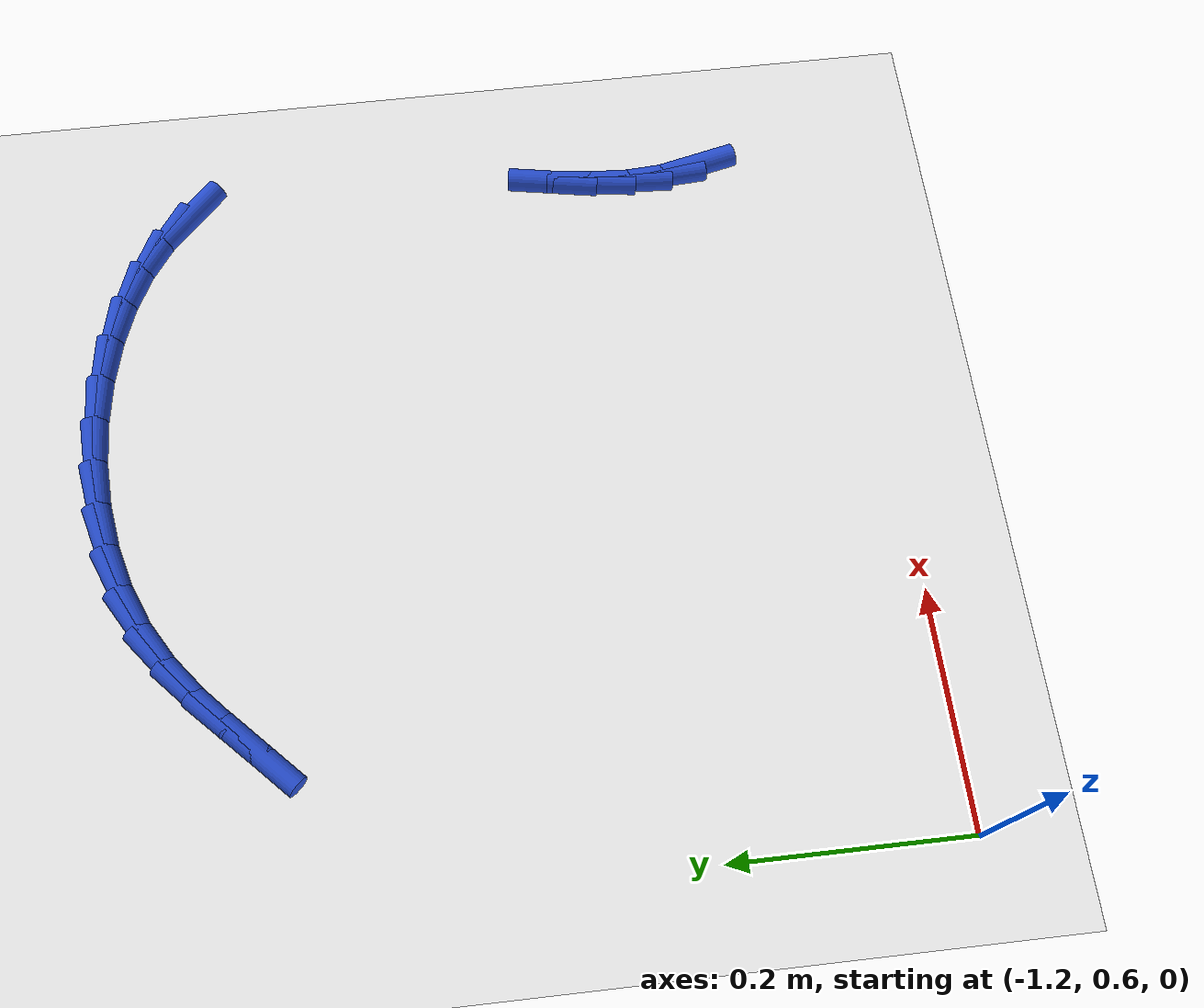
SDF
<sdf version="1.6">
 <world name="default">
  <model name="ground_plane">
   <static>1</static>
   <link name="link">
    <collision name="collision">
     <geometry><plane><normal>0 0 1</normal><size>100 100</size></plane></geometry>
     <surface><friction><ode><mu>100</mu><mu2>50</mu2></ode></friction></surface>
    </collision>
    <visual name="visual">
     <cast_shadows>0</cast_shadows>
     <geometry><plane><normal>0 0 1</normal><size>100 100</size></plane></geometry>
     <material>
      <script><uri>file://media/materials/scripts/gazebo.material</uri><name>Gazebo/WhiteGlow</name></script>
     </material>
    </visual>
   </link>
  </model>
  <model name="line">
   <link name="link_30">
    <pose>-0.5856492868402612 0.7307670711242708 0.01 0 1.57 -1.351774952093321</pose>
    <collision name="collision">
     <geometry><cylinder><radius>0.01</radius><length>0.08</length></cylinder></geometry>
    </collision>
    <visual name="visual">
     <material>
      <script><name>Gazebo/Blue</name><uri>file://media/materials/scripts/gazebo.material</uri></script>
     </material>
     <geometry><cylinder><radius>0.01</radius><length>0.08</length></cylinder></geometry>
    </visual>
   </link>
   <link name="link_31">
    <pose>-0.5920487900779455 0.7595169849794902 0.01 0 1.57 -1.5112019829685073</pose>
    <collision name="collision">
     <geometry><cylinder><radius>0.01</radius><length>0.08</length></cylinder></geometry>
    </collision>
    <visual name="visual">
     <material>
      <script><name>Gazebo/Blue</name><uri>file://media/materials/scripts/gazebo.material</uri></script>
     </material>
     <geometry><cylinder><radius>0.01</radius><length>0.08</length></cylinder></geometry>
    </visual>
   </link>
   <link name="link_32">
    <pose>-0.5939035513330879 0.7906032407668235 0.01 0 1.57 1.5167184158288343</pose>
    <collision name="collision">
     <geometry><cylinder><radius>0.01</radius><length>0.08</length></cylinder></geometry>
    </collision>
    <visual name="visual">
     <material>
      <script><name>Gazebo/Blue</name><uri>file://media/materials/scripts/gazebo.material</uri></script>
     </material>
     <geometry><cylinder><radius>0.01</radius><length>0.08</length></cylinder></geometry>
    </visual>
   </link>
   <link name="link_33">
    <pose>-0.5921179548317503 0.8235900096412082 0.01 0 1.57 1.440297520970659</pose>
    <collision name="collision">
     <geometry><cylinder><radius>0.01</radius><length>0.08</length></cylinder></geometry>
    </collision>
    <visual name="visual">
     <material>
      <script><name>Gazebo/Blue</name><uri>file://media/materials/scripts/gazebo.material</uri></script>
     </material>
     <geometry><cylinder><radius>0.01</radius><length>0.08</length></cylinder></geometry>
    </visual>
   </link>
   <link name="link_34">
    <pose>-0.5875963847999945 0.8580414627575832 0.01 0 1.57 1.3936125273458404</pose>
    <collision name="collision">
     <geometry><cylinder><radius>0.01</radius><length>0.08</length></cylinder></geometry>
    </collision>
    <visual name="visual">
     <material>
      <script><name>Gazebo/Blue</name><uri>file://media/materials/scripts/gazebo.material</uri></script>
     </material>
     <geometry><cylinder><radius>0.01</radius><length>0.08</length></cylinder></geometry>
    </visual>
   </link>
   <link name="link_44">
    <pose>-0.5904413193748509 1.1873096944682136 0.01 0 1.57 -0.7741221120359179</pose>
    <collision name="collision">
     <geometry><cylinder><radius>0.01</radius><length>0.08</length></cylinder></geometry>
    </collision>
    <visual name="visual">
     <material>
      <script><name>Gazebo/Blue</name><uri>file://media/materials/scripts/gazebo.material</uri></script>
     </material>
     <geometry><cylinder><radius>0.01</radius><length>0.08</length></cylinder></geometry>
    </visual>
   </link>
   <link name="link_45">
    <pose>-0.6131773018282735 1.2095386287209282 0.01 0 1.57 -0.6112378195390655</pose>
    <collision name="collision">
     <geometry><cylinder><radius>0.01</radius><length>0.08</length></cylinder></geometry>
    </collision>
    <visual name="visual">
     <material>
      <script><name>Gazebo/Blue</name><uri>file://media/materials/scripts/gazebo.material</uri></script>
     </material>
     <geometry><cylinder><radius>0.01</radius><length>0.08</length></cylinder></geometry>
    </visual>
   </link>
   <link name="link_46">
    <pose>-0.6404634815979583 1.2286597722121977 0.01 0 1.57 -0.4723466039167732</pose>
    <collision name="collision">
     <geometry><cylinder><radius>0.01</radius><length>0.08</length></cylinder></geometry>
    </collision>
    <visual name="visual">
     <material>
      <script><name>Gazebo/Blue</name><uri>file://media/materials/scripts/gazebo.material</uri></script>
     </material>
     <geometry><cylinder><radius>0.01</radius><length>0.08</length></cylinder></geometry>
    </visual>
   </link>
   <link name="link_47">
    <pose>-0.6715495847798604 1.2445423313712138 0.01 0 1.57 -0.3513605722321595</pose>
    <collision name="collision">
     <geometry><cylinder><radius>0.01</radius><length>0.08</length></cylinder></geometry>
    </collision>
    <visual name="visual">
     <material>
      <script><name>Gazebo/Blue</name><uri>file://media/materials/scripts/gazebo.material</uri></script>
     </material>
     <geometry><cylinder><radius>0.01</radius><length>0.08</length></cylinder></geometry>
    </visual>
   </link>
   <link name="link_48">
    <pose>-0.7056853374699339 1.257055512627167 0.01 0 1.57 -0.24250318873358515</pose>
    <collision name="collision">
     <geometry><cylinder><radius>0.01</radius><length>0.08</length></cylinder></geometry>
    </collision>
    <visual name="visual">
     <material>
      <script><name>Gazebo/Blue</name><uri>file://media/materials/scripts/gazebo.material</uri></script>
     </material>
     <geometry><cylinder><radius>0.01</radius><length>0.08</length></cylinder></geometry>
    </visual>
   </link>
   <link name="link_49">
    <pose>-0.742120465764133 1.266068522409248 0.01 0 1.57 -0.14075459577268148</pose>
    <collision name="collision">
     <geometry><cylinder><radius>0.01</radius><length>0.08</length></cylinder></geometry>
    </collision>
    <visual name="visual">
     <material>
      <script><name>Gazebo/Blue</name><uri>file://media/materials/scripts/gazebo.material</uri></script>
     </material>
     <geometry><cylinder><radius>0.01</radius><length>0.08</length></cylinder></geometry>
    </visual>
   </link>
   <link name="link_50">
    <pose>-0.7801046957584133 1.2714505671466487 0.01 0 1.57 -0.04175391287469112</pose>
    <collision name="collision">
     <geometry><cylinder><radius>0.01</radius><length>0.08</length></cylinder></geometry>
    </collision>
    <visual name="visual">
     <material>
      <script><name>Gazebo/Blue</name><uri>file://media/materials/scripts/gazebo.material</uri></script>
     </material>
     <geometry><cylinder><radius>0.01</radius><length>0.08</length></cylinder></geometry>
    </visual>
   </link>
   <link name="link_51">
    <pose>-0.8188877535487284 1.2730708532685595 0.01 0 1.57 0.058449232108458066</pose>
    <collision name="collision">
     <geometry><cylinder><radius>0.01</radius><length>0.08</length></cylinder></geometry>
    </collision>
    <visual name="visual">
     <material>
      <script><name>Gazebo/Blue</name><uri>file://media/materials/scripts/gazebo.material</uri></script>
     </material>
     <geometry><cylinder><radius>0.01</radius><length>0.08</length></cylinder></geometry>
    </visual>
   </link>
   <link name="link_52">
    <pose>-0.8577193652310333 1.2707985872041716 0.01 0 1.57 0.16363332900906782</pose>
    <collision name="collision">
     <geometry><cylinder><radius>0.01</radius><length>0.08</length></cylinder></geometry>
    </collision>
    <visual name="visual">
     <material>
      <script><name>Gazebo/Blue</name><uri>file://media/materials/scripts/gazebo.material</uri></script>
     </material>
     <geometry><cylinder><radius>0.01</radius><length>0.08</length></cylinder></geometry>
    </visual>
   </link>
   <link name="link_53">
    <pose>-0.8958492569012824 1.2645029753826762 0.01 0 1.57 0.2775521664038082</pose>
    <collision name="collision">
     <geometry><cylinder><radius>0.01</radius><length>0.08</length></cylinder></geometry>
    </collision>
    <visual name="visual">
     <material>
      <script><name>Gazebo/Blue</name><uri>file://media/materials/scripts/gazebo.material</uri></script>
     </material>
     <geometry><cylinder><radius>0.01</radius><length>0.08</length></cylinder></geometry>
    </visual>
   </link>
   <link name="link_54">
    <pose>-0.9325271546554303 1.254053224233264 0.01 0 1.57 0.40389680177569504</pose>
    <collision name="collision">
     <geometry><cylinder><radius>0.01</radius><length>0.08</length></cylinder></geometry>
    </collision>
    <visual name="visual">
     <material>
      <script><name>Gazebo/Blue</name><uri>file://media/materials/scripts/gazebo.material</uri></script>
     </material>
     <geometry><cylinder><radius>0.01</radius><length>0.08</length></cylinder></geometry>
    </visual>
   </link>
   <link name="link_55">
    <pose>-0.9670027845894313 1.2393185401851263 0.01 0 1.57 0.5445401659723318</pose>
    <collision name="collision">
     <geometry><cylinder><radius>0.01</radius><length>0.08</length></cylinder></geometry>
    </collision>
    <visual name="visual">
     <material>
      <script><name>Gazebo/Blue</name><uri>file://media/materials/scripts/gazebo.material</uri></script>
     </material>
     <geometry><cylinder><radius>0.01</radius><length>0.08</length></cylinder></geometry>
    </visual>
   </link>
   <link name="link_56">
    <pose>-0.9985576978041976 1.2202083158968158 0.01 0 1.57 0.6705837889567258</pose>
    <collision name="collision">
     <geometry><cylinder><radius>0.01</radius><length>0.08</length></cylinder></geometry>
    </collision>
    <visual name="visual">
     <material>
      <script><name>Gazebo/Blue</name><uri>file://media/materials/scripts/gazebo.material</uri></script>
     </material>
     <geometry><cylinder><radius>0.01</radius><length>0.08</length></cylinder></geometry>
    </visual>
   </link>
   <link name="link_57">
    <pose>-1.0271706803305822 1.197512360003284 0.01 0 1.57 0.7521878209823392</pose>
    <collision name="collision">
     <geometry><cylinder><radius>0.01</radius><length>0.08</length></cylinder></geometry>
    </collision>
    <visual name="visual">
     <material>
      <script><name>Gazebo/Blue</name><uri>file://media/materials/scripts/gazebo.material</uri></script>
     </material>
     <geometry><cylinder><radius>0.01</radius><length>0.08</length></cylinder></geometry>
    </visual>
   </link>
   <link name="link_58">
    <pose>-1.0534989823114589 1.1728771947348358 0.01 0 1.57 0.7886924235214735</pose>
    <collision name="collision">
     <geometry><cylinder><radius>0.01</radius><length>0.08</length></cylinder></geometry>
    </collision>
    <visual name="visual">
     <material>
      <script><name>Gazebo/Blue</name><uri>file://media/materials/scripts/gazebo.material</uri></script>
     </material>
     <geometry><cylinder><radius>0.01</radius><length>0.08</length></cylinder></geometry>
    </visual>
   </link>
   <link name="link_59">
    <pose>-1.0782279238545378 1.1479847869681048 0.01 0 1.57 0.7780548342132023</pose>
    <collision name="collision">
     <geometry><cylinder><radius>0.01</radius><length>0.08</length></cylinder></geometry>
    </collision>
    <visual name="visual">
     <material>
      <script><name>Gazebo/Blue</name><uri>file://media/materials/scripts/gazebo.material</uri></script>
     </material>
     <geometry><cylinder><radius>0.01</radius><length>0.08</length></cylinder></geometry>
    </visual>
   </link>
  </model>
 </world>
</sdf>
